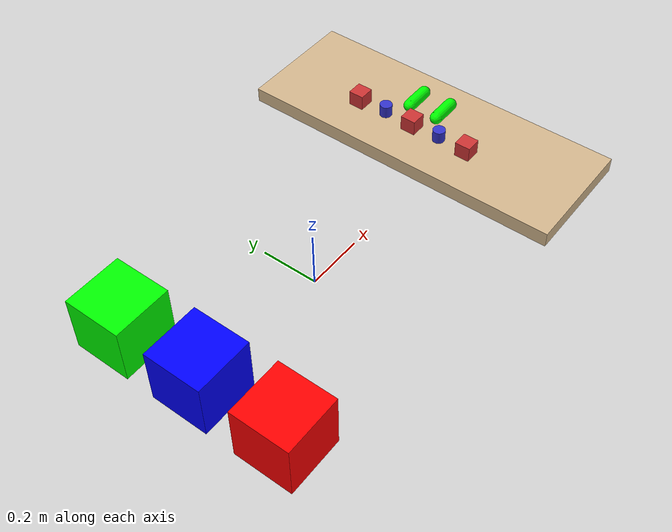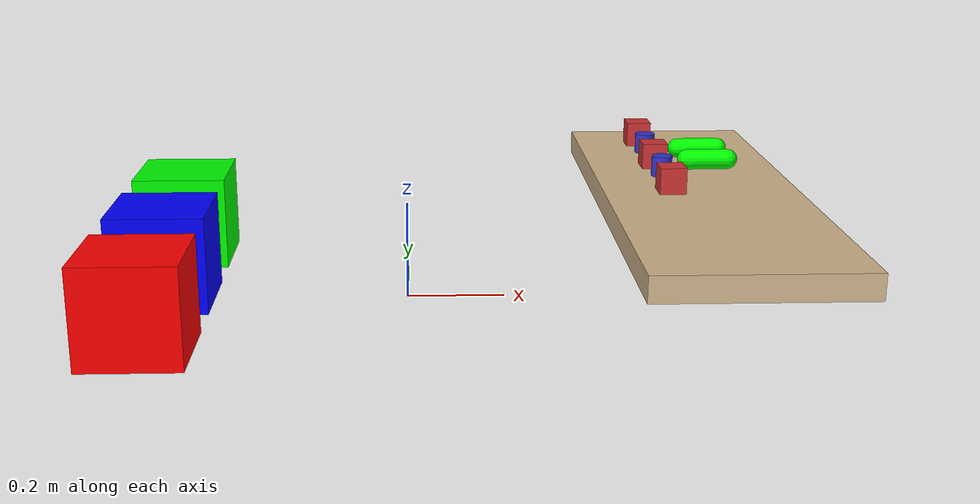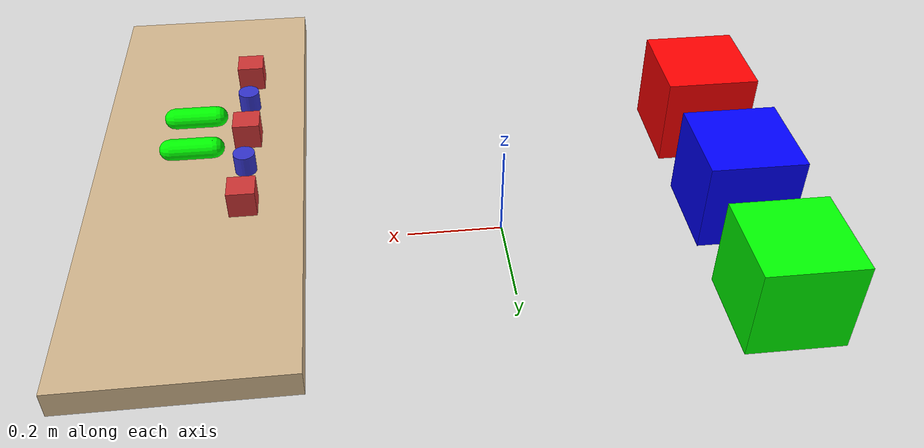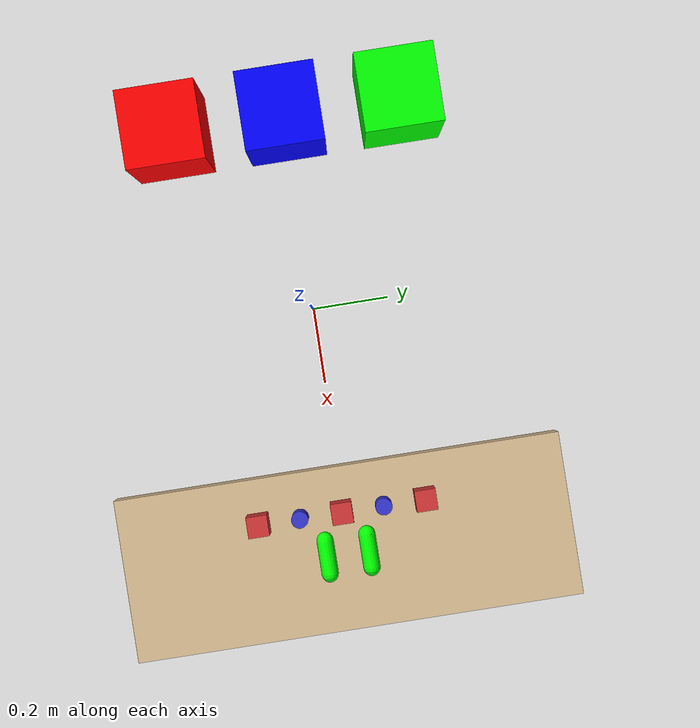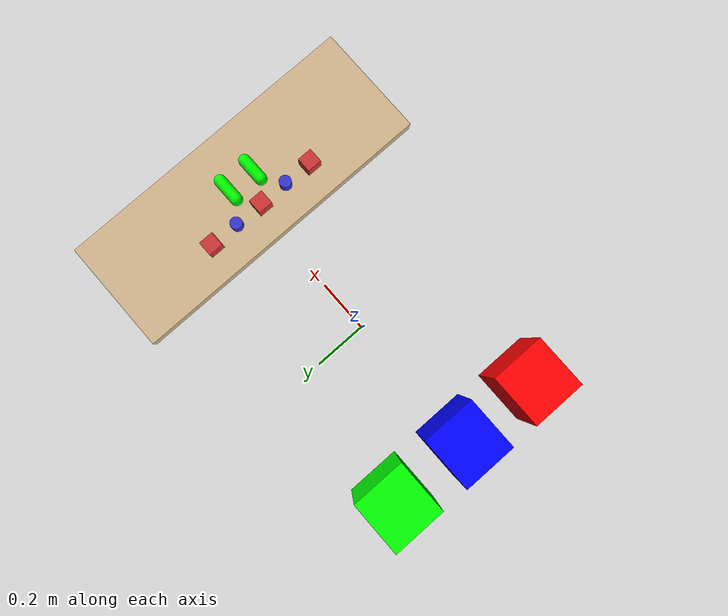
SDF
<sdf version="1.6">
 <world name="pick_and_place_sorting_world">
  <joint name="world_to_robot" type="fixed"><parent>world</parent><child>j2s7s300::base</child></joint>
  <model name="table_source">
   <static>true</static>
   <pose>0.6 0 0.2 0 0 0</pose>
   <link name="table_source_top_link">
    <visual name="visual">
     <geometry><box><size>0.4 1.1 0.05</size></box></geometry>
     <material><diffuse>0.82 0.71 0.55 1.0</diffuse><specular>0.2 0.2 0.2 1.0</specular></material>
    </visual>
    <collision name="collision">
     <geometry><box><size>0.4 1.1 0.05</size></box></geometry>
     <proximity_properties><mu_dynamic>0.3</mu_dynamic><mu_static>0.3</mu_static></proximity_properties>
    </collision>
   </link>
  </model>
  <model name="bin_red">
   <static>true</static>
   <pose>-0.5 -0.3 0.1 0 0 0</pose>
   <link name="link">
    <visual name="visual">
     <geometry><box><size>0.2 0.2 0.2</size></box></geometry>
     <material><diffuse>1 0 0 1</diffuse><specular>0.3 0.3 0.3 1.0</specular></material>
    </visual>
   </link>
  </model>
  <model name="bin_blue">
   <static>true</static>
   <pose>-0.5 0 0.1 0 0 0</pose>
   <link name="link">
    <visual name="visual">
     <geometry><box><size>0.2 0.2 0.2</size></box></geometry>
     <material><diffuse>0 0 1 1</diffuse><specular>0.3 0.3 0.3 1.0</specular></material>
    </visual>
   </link>
  </model>
  <model name="bin_green">
   <static>true</static>
   <pose>-0.5 0.3 0.1 0 0 0</pose>
   <link name="link">
    <visual name="visual">
     <geometry><box><size>0.2 0.2 0.2</size></box></geometry>
     <material><diffuse>0 1 0 1</diffuse><specular>0.3 0.3 0.3 1.0</specular></material>
    </visual>
   </link>
  </model>
  <model name="object_cube_1">
   <pose>0.5 0.2 0.3 0 0 0</pose>
   <link name="link">
    <inertial>
     <mass>0.1</mass>
     <inertia><ixx>8.33e-5</ixx><iyy>8.33e-5</iyy><izz>8.33e-5</izz><ixy>0</ixy><ixz>0</ixz><iyz>0</iyz></inertia>
    </inertial>
    <collision name="collision">
     <geometry><box><size>0.05 0.05 0.05</size></box></geometry>
     <proximity_properties><mu_dynamic>0.5</mu_dynamic><mu_static>0.5</mu_static></proximity_properties>
    </collision>
    <visual name="visual">
     <geometry><box><size>0.05 0.05 0.05</size></box></geometry>
     <material><diffuse>0.8 0.2 0.2 1.0</diffuse></material>
    </visual>
   </link>
  </model>
  <model name="object_cube_2">
   <pose>0.5 -0.2 0.3 0 0 0</pose>
   <link name="link">
    <inertial>
     <mass>0.1</mass>
     <inertia><ixx>8.33e-5</ixx><iyy>8.33e-5</iyy><izz>8.33e-5</izz><ixy>0</ixy><ixz>0</ixz><iyz>0</iyz></inertia>
    </inertial>
    <collision name="collision">
     <geometry><box><size>0.05 0.05 0.05</size></box></geometry>
     <proximity_properties><mu_dynamic>0.5</mu_dynamic><mu_static>0.5</mu_static></proximity_properties>
    </collision>
    <visual name="visual">
     <geometry><box><size>0.05 0.05 0.05</size></box></geometry>
     <material><diffuse>0.8 0.2 0.2 1.0</diffuse></material>
    </visual>
   </link>
  </model>
  <model name="object_cube_3">
   <pose>0.5 0 0.3 0 0 0</pose>
   <link name="link">
    <inertial>
     <mass>0.1</mass>
     <inertia><ixx>8.33e-5</ixx><iyy>8.33e-5</iyy><izz>8.33e-5</izz><ixy>0</ixy><ixz>0</ixz><iyz>0</iyz></inertia>
    </inertial>
    <collision name="collision">
     <geometry><box><size>0.05 0.05 0.05</size></box></geometry>
     <proximity_properties><mu_dynamic>0.5</mu_dynamic><mu_static>0.5</mu_static></proximity_properties>
    </collision>
    <visual name="visual">
     <geometry><box><size>0.05 0.05 0.05</size></box></geometry>
     <material><diffuse>0.8 0.2 0.2 1.0</diffuse></material>
    </visual>
   </link>
  </model>
  <model name="cylinder_1">
   <pose>0.5 -0.1 0.3 0 0 0</pose>
   <link name="link">
    <inertial>
     <mass>0.05</mass>
     <inertia><ixx>1.67e-5</ixx><iyy>1.67e-5</iyy><izz>3.33e-5</izz><ixy>0</ixy><ixz>0</ixz><iyz>0</iyz></inertia>
    </inertial>
    <collision name="collision">
     <geometry><cylinder><radius>0.02</radius><length>0.04</length></cylinder></geometry>
     <proximity_properties><mu_dynamic>0.5</mu_dynamic><mu_static>0.5</mu_static></proximity_properties>
    </collision>
    <visual name="visual">
     <geometry><cylinder><radius>0.02</radius><length>0.04</length></cylinder></geometry>
     <material><diffuse>0.2 0.2 0.8 1.0</diffuse></material>
    </visual>
   </link>
  </model>
  <model name="cylinder_2">
   <pose>0.5 0.1 0.3 0 0 0</pose>
   <link name="link">
    <inertial>
     <mass>0.05</mass>
     <inertia><ixx>1.67e-5</ixx><iyy>1.67e-5</iyy><izz>3.33e-5</izz><ixy>0</ixy><ixz>0</ixz><iyz>0</iyz></inertia>
    </inertial>
    <collision name="collision">
     <geometry><cylinder><radius>0.02</radius><length>0.04</length></cylinder></geometry>
     <proximity_properties><mu_dynamic>0.5</mu_dynamic><mu_static>0.5</mu_static></proximity_properties>
    </collision>
    <visual name="visual">
     <geometry><cylinder><radius>0.02</radius><length>0.04</length></cylinder></geometry>
     <material><diffuse>0.2 0.2 0.8 1.0</diffuse></material>
    </visual>
   </link>
  </model>
  <model name="object_capsule_1">
   <pose>0.6 0.05 0.3 0 1.57 0</pose>
   <link name="link">
    <inertial><mass>0.06</mass><inertia><ixx>2.0e-5</ixx><iyy>2.0e-5</iyy><izz>3.0e-5</izz></inertia></inertial>
    <collision name="collision">
     <geometry><capsule><radius>0.02</radius><length>0.08</length></capsule></geometry>
     <proximity_properties><mu_dynamic>0.5</mu_dynamic><mu_static>0.5</mu_static></proximity_properties>
    </collision>
    <visual name="visual">
     <geometry><capsule><radius>0.02</radius><length>0.08</length></capsule></geometry>
     <material><diffuse>0 1 0 1</diffuse></material>
    </visual>
   </link>
  </model>
  <model name="object_capsule_2">
   <pose>0.6 -0.05 0.3 0 1.57 0</pose>
   <link name="link">
    <inertial><mass>0.06</mass><inertia><ixx>2.0e-5</ixx><iyy>2.0e-5</iyy><izz>3.0e-5</izz></inertia></inertial>
    <collision name="collision">
     <geometry><capsule><radius>0.02</radius><length>0.08</length></capsule></geometry>
     <proximity_properties><mu_dynamic>0.5</mu_dynamic><mu_static>0.5</mu_static></proximity_properties>
    </collision>
    <visual name="visual">
     <geometry><capsule><radius>0.02</radius><length>0.08</length></capsule></geometry>
     <material><diffuse>0 1 0 1</diffuse></material>
    </visual>
   </link>
  </model>
 </world>
</sdf>
